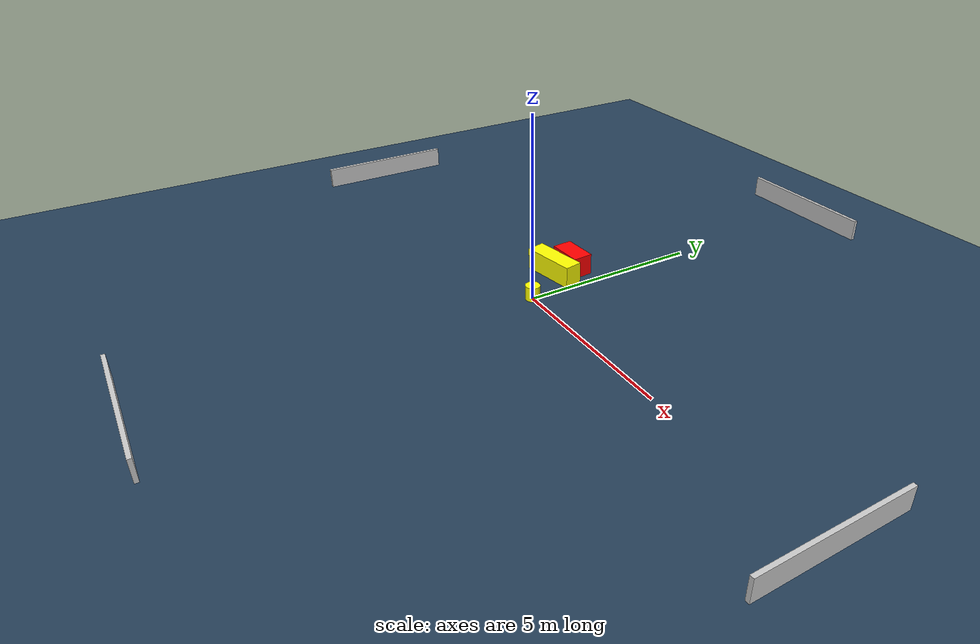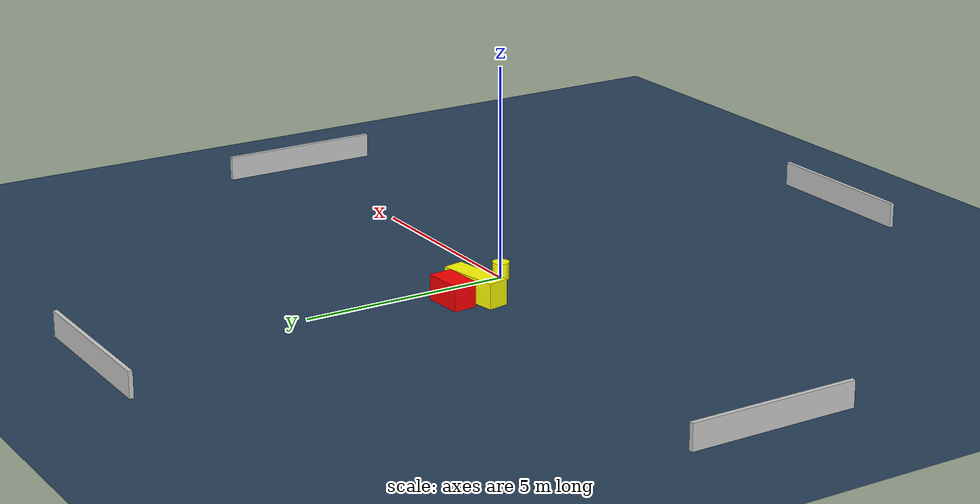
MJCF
<?xml version="1.0" ?>
<mujoco model="generated_environment">
  <option timestep="0.01" integrator="RK4" cone="elliptic"/>
  <default>
    <geom density="1"/>
  </default>
  <asset>
    <texture builtin="gradient" height="3072" name="skybox" rgb1="0.3 0.5 0.7" rgb2="0 0 0" type="skybox" width="512"/>
    <texture builtin="checker" height="300" name="groundplane" rgb1="0.2 0.3 0.4" rgb2="0.1 0.2 0.3" type="2d" width="300"/>
    <material name="groundplane" reflectance="0.2" texrepeat="5 5" texture="groundplane"/>
  </asset>
  <worldbody>
    <light dir="0 0 -1" directional="true" pos="0 0 1.5"/>
    <geom condim="3" friction="0.5 0.005 0.001" material="groundplane" name="floor" pos="0 0 0" size="0 0 0.05" type="plane"/>
    <body name="walls">
      <geom name="wall_1" condim="4" pos="-10.0 0.0 0.3" rgba="0.800000011920929 0.800000011920929 0.800000011920929 1.0" size="0.05 2.0 0.3" type="box"/>
      <geom name="wall_2" condim="4" pos="10.0 0.0 0.3" rgba="0.800000011920929 0.800000011920929 0.800000011920929 1.0" size="0.05 2.0 0.3" type="box"/>
      <geom name="wall_3" condim="4" pos="0.0 -10.0 0.3" rgba="0.800000011920929 0.800000011920929 0.800000011920929 1.0" size="2.0 0.05 0.3" type="box"/>
      <geom name="wall_4" condim="4" pos="0.0 10.0 0.3" rgba="0.800000011920929 0.800000011920929 0.800000011920929 1.0" size="2.0 0.05 0.3" type="box"/>
    </body>
    <body name="robot">
      <joint name="joint_x" type="slide" pos="0 0 0" axis="1 0 0"/>
      <joint name="joint_y" type="slide" pos="0 0 0" axis="0 1 0"/>
      <geom name="robot" type="cylinder" pos="0.0 0.0 0.2" size="0.2 0.2 0.0" mass="5.0" friction="1.0 0.005 0.0001" condim="4" rgba="1.0 1.0 0.0 1.0"/>
    </body>
    <body name="obstacle_1_movable">
      <geom name="obstacle_1_movable" condim="4" pos="-0.793549243328884 1.1658641053975403 0.3" euler="0 0 280.0987830612917" friction="0.0 0.005 0.001" rgba="1.0 1.0 0.0 1.0" size="0.24990494936066124 0.7707252592978437 0.3" type="box" mass="0.1"/>
      <joint type="free"/>
    </body>
    <body name="obstacle_2_static">
      <geom name="obstacle_2_static" condim="4" pos="-0.8028634059194911 1.7666588229873625 0.3" euler="0 0 183.4344969495426" friction="0.0 0.005 0.001" rgba="1.0 0.0 0.0 1.0" size="0.48687499819480257 0.2799477910539563 0.3" type="box"/>
    </body>
  </worldbody>
  <actuator>
    <motor name="actuator_x" joint="joint_x" gear="1" ctrlrange="-1 1"/>
    <motor name="actuator_y" joint="joint_y" gear="1" ctrlrange="-1 1"/>
  </actuator>
</mujoco>
